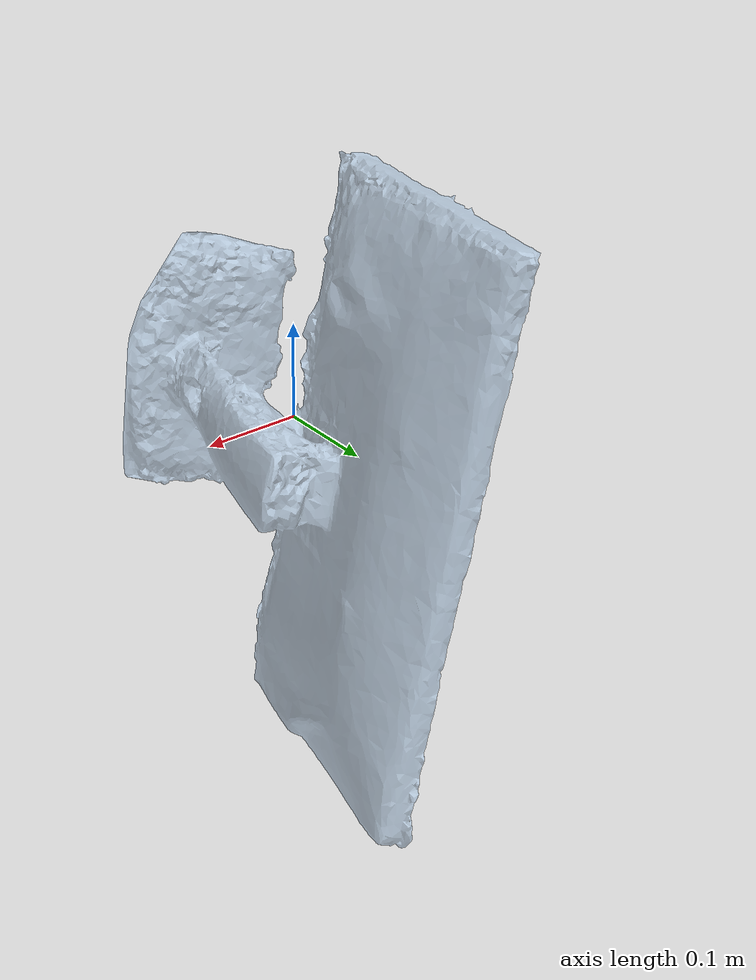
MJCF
<mujoco model="monitor">
    <compiler meshdir="./"/>

    <default>
        <geom friction="0.9 0.5 0.5" rgba="0.7 0.8 0.9 0.7"/>
        <joint damping="0.5"/>
    </default>

    <asset>
        <mesh name="monitor_mesh" file="monitor.obj" scale="1 1 1"/>
    </asset>

    <worldbody>
        <body name="monitor_link">
            <inertial pos="0 0 0" mass="0.1" diaginertia="0.002 0.002 0.002"/>
            <geom name="monitor" type="mesh" mesh="monitor_mesh"
                  pos="0 0 0" quat="1 0 0 0"
                  rgba="0.7 0.8 0.9 0.7"
                  friction="0.9 0.5 0.5"
                  solref="0.02 1"
                  solimp="0.9 0.95 0.001"/>
        </body>
    </worldbody>
</mujoco>
